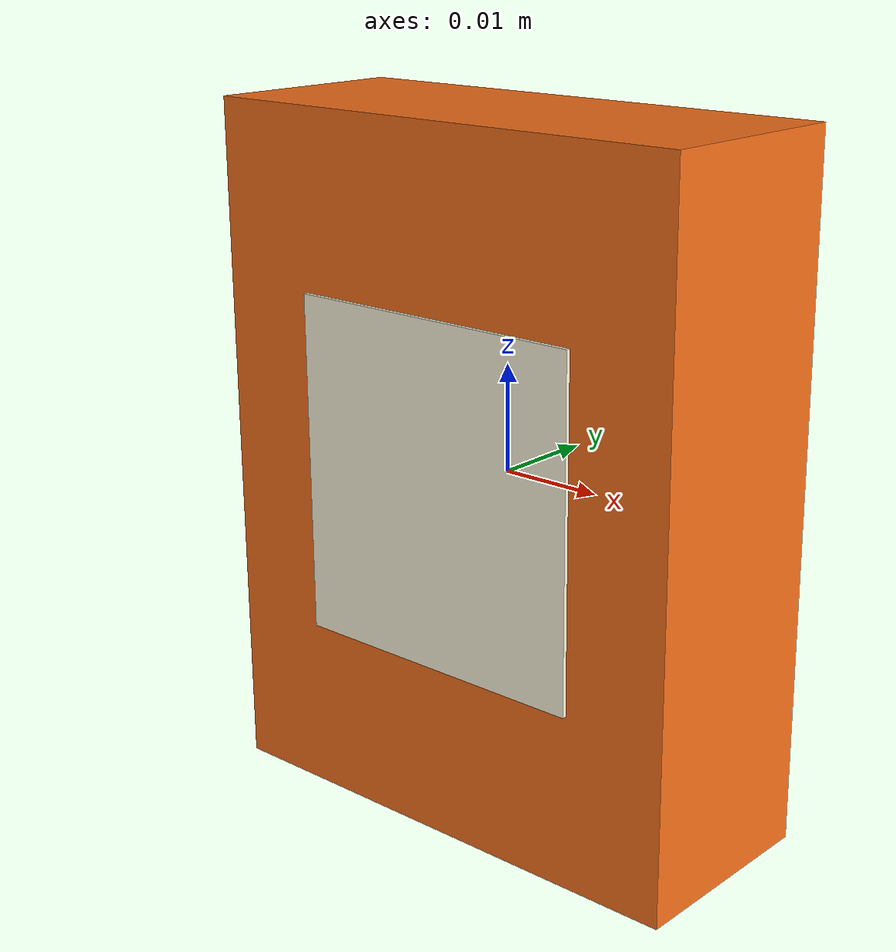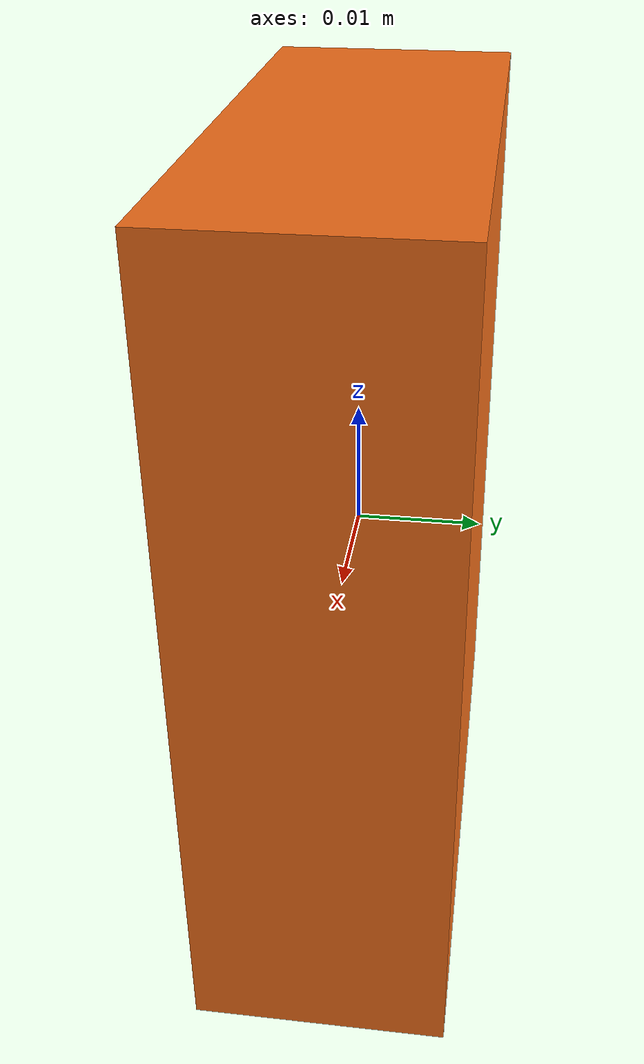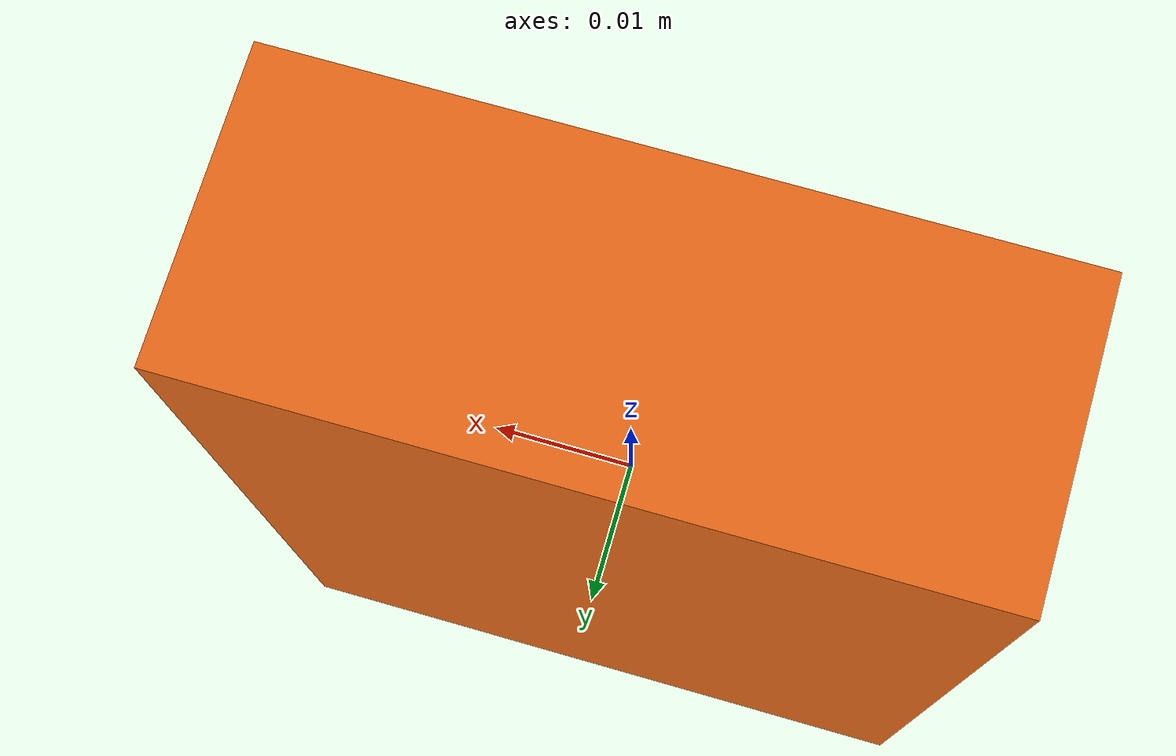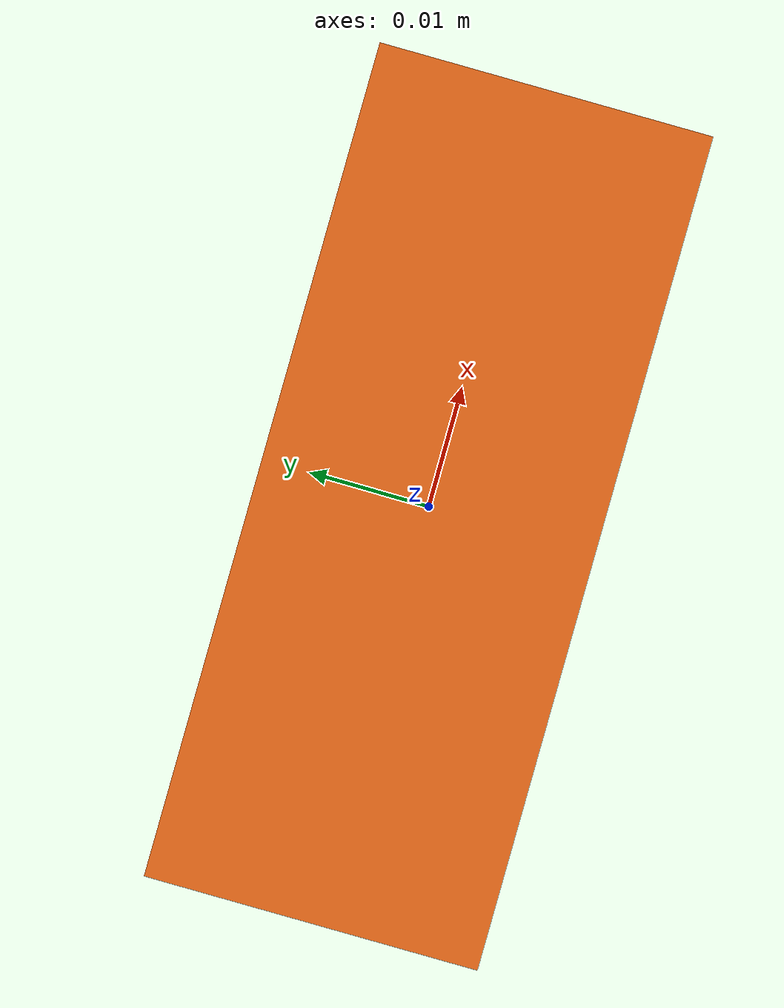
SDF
<?xml version="1.0"?>
<sdf version="1.8">
  <model name="grasp_object">
    <link name="object">
      <inertial>
        <mass>0.08</mass>
        <inertia>
          <ixx>0.00003083</ixx><iyy>0.00004483</iyy><izz>0.00001933</izz>
          <ixy>0</ixy><ixz>0</ixz><iyz>0</iyz>
        </inertia>
      </inertial>
      <collision name="collision">
        <geometry><box><size>0.050 0.020 0.065</size></box></geometry>
        <surface>
          <friction><ode><mu>1.2</mu><mu2>1.2</mu2></ode></friction>
          <contact><ode><kp>100000</kp><kd>10</kd></ode></contact>
        </surface>
      </collision>
      <visual name="body">
        <geometry><box><size>0.050 0.020 0.065</size></box></geometry>
        <material>
          <ambient>0.78 0.34 0.08 1</ambient>
          <diffuse>0.95 0.43 0.10 1</diffuse>
          <roughness><metal><roughness>0.62</roughness><metalness>0.0</metalness></metal></roughness>
        </material>
      </visual>
      <visual name="label">
        <pose>0 -0.0102 0 1.57079632679 0 0</pose>
        <geometry><box><size>0.030 0.032 0.0004</size></box></geometry>
        <material><ambient>0.92 0.90 0.80 1</ambient><diffuse>0.98 0.96 0.86 1</diffuse></material>
      </visual>
    </link>
  </model>
</sdf>
